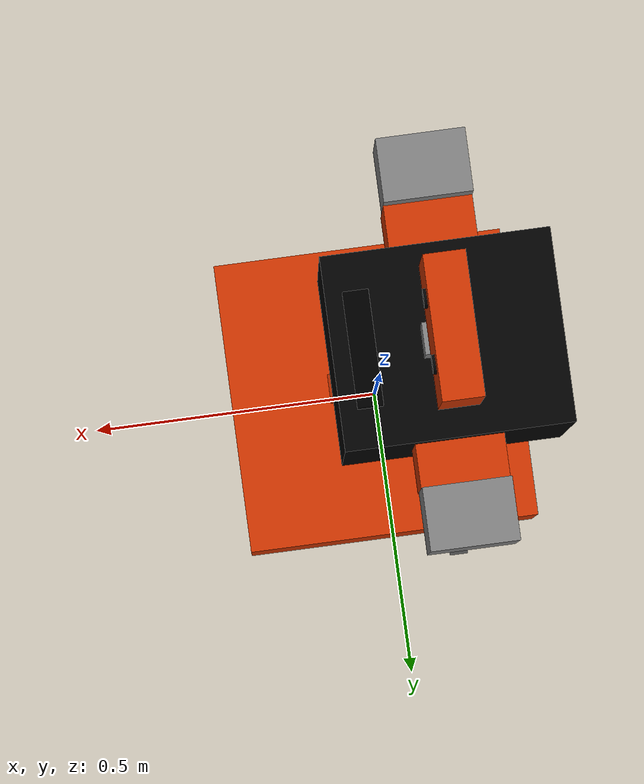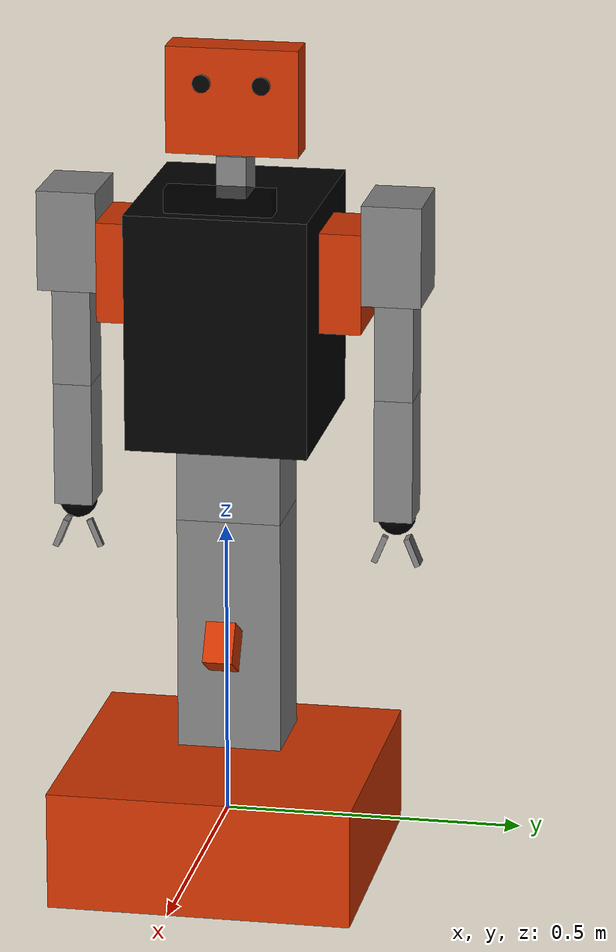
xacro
<?xml version="1.0"?>
<robot xmlns:xacro="http://www.ros.org/wiki/xacro" name="tangerige">

<!-- .......................MACROS.................... -->

  <xacro:macro name="default_physics" params="mass len rad">
  	<collision>
      <geometry>
        <cylinder length="${len}" radius="${rad}"/>
      </geometry>
    </collision>
  	<inertial>
  		<mass value="${mass}" />
  		<inertia ixx="1.0" ixy="0.0" ixz="0.0"
  											 iyy="1.0" iyz="0.0"
  											 izz="1.0" />
  	</inertial>
  	<dynamics damping="0.7" friction="1000.0"/>
  </xacro:macro>

  <xacro:macro name="gazebo_colors" params="name color">
  	<gazebo reference="${name}">
    	<material>Gazebo/${color}</material>
  	</gazebo>
  </xacro:macro>

<!-- ....................... END MACROS.................... -->

<!-- ................BASE................. -->

  <link name="base_link_robot">
    <visual>
      <geometry>
        <box size="0.51 0.51 0.2"/>
      </geometry>
      <material name="orange">
      	<color rgba=".8 .2 0 1"/>
      </material>
    </visual>
    <origin xyz="0 0 -.1"/>
    <xacro:default_physics mass="10" len="0.2" rad="0.31"/>
  </link>

  <xacro:gazebo_colors name="base_link_robot" color="Red" />

  <link name="lower_torso">
    <visual>
      <geometry>
        <box size="0.15 0.176 0.4"/>
      </geometry>
      <material name="grey">
      	<color rgba="0.5 0.5 0.5 1"/>
      </material>
      <origin rpy="0 0 0"/>
    </visual>
    <xacro:default_physics mass="6" len="0.55" rad="0.13"/>
  </link>

  <xacro:gazebo_colors name="lower_torso" color="Red" />

  <joint name="base_to_laser_link" type="revolute">
  	<axis xyz="1 0 0"/>
  	<limit effort="1000.0" lower="0" upper="0" velocity="0"/>
    <parent link="base_link_robot"/>
    <child link="lower_torso"/>
    <origin xyz="-0.093 0 0.3"/>
  </joint>

<!--newly added laser link and joint with the lower torso -->

<link name="base_laser">
    <visual>
      <geometry>
        <box size="0.07 0.05 0.07"/>
      </geometry>
      <material name="orange">
      	<color rgba=".8 .2 0 1"/>
      </material>
    </visual>
    <origin xyz="0 0 0"/>
    <xacro:default_physics mass="6" len="0.1" rad="0.1"/>
  </link>

  <xacro:gazebo_colors name="base_laser" color="Red" />

  <joint name="lower_torso_to_laser_link" type="revolute">
  	<axis xyz="0 1 0"/>
  	<limit effort="1000.0" lower="-0.57" upper="0.57" velocity="1"/>
    <parent link="lower_torso"/>
    <child link="base_laser"/>
    <origin xyz="0.13 0 0" rpy="0 -0.523 0"/>
  </joint>

<!-- the link and joint end here -->

  <link name="upper_base_laser">
    <visual>
      <geometry>
        <box size="0.176 0.15 0.15"/>
      </geometry>
      <material name="grey"/>
    </visual>
    <xacro:default_physics mass="6" len="0.55" rad="0.13"/>
  </link>

  <xacro:gazebo_colors name="upper_base_laser" color="Gray" />

  <joint name="base_to_upper_base" type="revolute">
  	<axis xyz="1 0 0"/>
  	<limit effort="1000.0" lower="0" upper="0" velocity="0"/>
    <parent link="base_link_robot"/>
    <child link="upper_base_laser"/>
    <origin rpy="0 0 -1.57075" xyz="-0.093 0 0.575"/>
  </joint>

  <link name="superior_link">
    <visual>
      <geometry>
        <box size="0.305 0.360 0.4"/>
      </geometry>
      <material name="black">
      	<color rgba="0 0 0 1"/>
      </material>
    </visual>
    <xacro:default_physics mass="8" len="0.4" rad="0.22"/>
  </link>

  <xacro:gazebo_colors name="superior_link" color="Black" />

  <joint name="upper_base_to_superior_link" type="revolute">
  	<axis xyz="1 0 0"/>
  	<limit effort="1000" lower="0" upper="0" velocity="0"/>
    <parent link="upper_base_laser"/>
    <child link="superior_link"/>
    <origin xyz="0 0 0.275"/>
  </joint>

 <link name="skeleton/openni_depth_frame">
  <visual>
    <geometry>
      <box size="0.04 0.18 0.04"/>
     </geometry>
     <material name="grey">
      <color rgba="0 0 0 0.5"/>
     </material>
  </visual>
  <xacro:default_physics mass="0.01" len="0.01" rad="0.01"/>
  </link>

 <joint name="superior_link_to_openni_depth_frame" type="revolute">
  	<axis xyz="1 0 0"/>
  	<limit effort="1000.0" lower="0" upper="0" velocity="0"/>
    <parent link="superior_link"/>
    <child link="skeleton/openni_depth_frame"/>
    <origin rpy="0 0 1.57075" xyz="0 0.1325 0.22"/>
  </joint>

  <!-- ................END BASE................. -->

  <!-- ................HEAD................. -->

  <link name="neck_link">
    <visual>
      <geometry>
        <box size="0.05 0.08 0.07"/>
      </geometry>
      <material name="grey"/>
    </visual>
    <xacro:default_physics mass="0.5" len="0.07" rad="0.036"/>
  </link>

  <xacro:gazebo_colors name="neck_link" color="Red" />

  <joint name="superior_to_neck_link" type="revolute">
  	<axis xyz="1 0 0"/>
  	<limit effort="1000.0" lower="0" upper="0" velocity="0"/>
    <parent link="superior_link"/>
    <child link="neck_link"/>
    <origin xyz="0 0 0.235"/>
  </joint>

  <link name="neck_z_revolute">
  	<xacro:default_physics mass="0.01" len="0.01" rad="0.01"/>
  </link>

  <joint name="neck_to_z_revolute" type="revolute">
  	<axis xyz="0 0 1"/>
  	<limit effort="1000.0" lower="-0.7853" upper="0.7853" velocity="5"/>
    <parent link="neck_link"/>
    <child link="neck_z_revolute"/>
  </joint>

  <link name="neck_x_revolute">
  	<xacro:default_physics mass="0.01" len="0.01" rad="0.01"/>
  </link>

  <joint name="z_revolute_to_x_revolute" type="revolute">
  	<axis xyz="1 0 0"/>
  	<limit effort="1000.0" lower="-0.3926" upper="0.3926" velocity="5"/>
    <parent link="neck_z_revolute"/>
    <child link="neck_x_revolute"/>
  </joint>

  <link name="head">
    <visual>
      <geometry>
        <box size="0.222 0.065 0.18"/>
      </geometry>
      <material name="orange"/>
    </visual>
    <xacro:default_physics mass="4" len="0.18" rad="0.16"/>
  </link>

  <xacro:gazebo_colors name="head" color="Red" />

  <joint name="revolute_head" type="revolute">
  	<axis xyz="1 0 0"/>
  	<limit effort="1000.0" lower="0" upper="0" velocity="0"/>
    <parent link="neck_x_revolute"/>
    <child link="head"/>
    <origin xyz="0 0 0.125"/>
  </joint>

  <link name="right_eye">
    <visual>
      <geometry>
        <cylinder length="0.015" radius="0.015"/>
      </geometry>
      <material name="black"/>
      <origin rpy="-1.57075 0 0" />
    </visual>
    <xacro:default_physics mass="0.2" len="0.03" rad="0.01"/>
  </link>

  <joint name="right_eye_to_head" type="revolute">
  	<axis xyz="1 0 0"/>
  	<limit effort="1000.0" lower="0" upper="0" velocity="0"/>
    <parent link="head"/>
    <child link="right_eye"/>
    <origin xyz="0.05 0.03 0.03"/>
  </joint>

  <link name="left_eye">
    <visual>
      <geometry>
        <cylinder length="0.015" radius="0.015"/>
      </geometry>
      <material name="black"/>
      <origin rpy="-1.57075 0 0" />
    </visual>
    <xacro:default_physics mass="0.2" len="0.03" rad="0.01"/>
  </link>

  <joint name="left_eye_to_head" type="revolute">
  	<axis xyz="1 0 0"/>
  	<limit effort="1000.0" lower="0" upper="0" velocity="0"/>
    <parent link="head"/>
    <child link="left_eye"/>
    <origin xyz="-0.05 0.03 0.03"/>
  </joint>

  <!-- ................END HEAD................. -->

  <!-- ................RIGHT ARM................. -->

  <link name="right_shoulder_link">
    <visual>
      <geometry>
        <box size="0.07 0.14 0.17"/>
      </geometry>
      <material name="orange"/>
    </visual>
    <xacro:default_physics mass="2" len="0.23" rad="0.13"/>
  </link>

  <xacro:gazebo_colors name="right_shoulder_link" color="Gray" />

  <joint name="superior_link_to_right_shoulder_link" type="revolute">
  	<axis xyz="1 0 0"/>
  	<limit effort="1000.0" lower="-0.785375" upper="1.57075" velocity="5"/>
    <parent link="superior_link"/>
    <child link="right_shoulder_link"/>
    <origin xyz="0.1875 0 0.07"/>
  </joint>

  <link name="right_shoulder">
    <visual>
      <geometry>
        <box size="0.10 0.14 0.17"/>
      </geometry>
      <material name="grey"/>
    </visual>
    <xacro:default_physics mass="2" len="0.23" rad="0.13"/>
  </link>

  <xacro:gazebo_colors name="right_shoulder" color="Gray" />

  <joint name="right_shoulder_x_revolute" type="revolute">
  	<axis xyz="1 0 0"/>
  	<limit effort="1000.0" lower="-0.785375" upper="1.57075" velocity="5"/>
    <parent link="superior_link"/>
    <child link="right_shoulder"/>
    <origin xyz="0.2725 0 0.12"/>
  </joint>

  <link name="upper_right_arm_z_revolute">
  	<xacro:default_physics mass="0.01" len="0.01" rad="0.01"/>
  </link>

  <joint name="upper_right_arm_z_revolute" type="revolute">
  	<axis xyz="0 0 1"/>
  	<limit effort="1000.0" lower="-0.3926" upper="0.3926" velocity="5"/>
    <parent link="right_shoulder"/>
    <child link="upper_right_arm_z_revolute"/>
    <origin xyz="0 0 0"/>
  </joint>

  <link name="upper_right_arm_y_revolute">
  	<xacro:default_physics mass="0.01" len="0.01" rad="0.01"/>
  </link>

  <joint name="upper_right_arm_y_revolute" type="revolute">
  	<axis xyz="0 1 0"/>
  	<limit effort="1000.0" lower="-0.3926" upper="0" velocity="5"/>
    <parent link="upper_right_arm_z_revolute"/>
    <child link="upper_right_arm_y_revolute"/>
    <origin xyz="0 0 0"/>
  </joint>

  <link name="upper_right_arm">
    <visual>
      <geometry>
        <box size="0.065 0.08 0.17"/>
      </geometry>
      <material name="grey"/>
    </visual>
    <xacro:default_physics mass="3" len="0.17" rad="0.046"/>
  </link>

  <xacro:gazebo_colors name="upper_right_arm" color="Gray" />

  <joint name="shoulder_to_upper_right_arm" type="revolute">
  	<axis xyz="1 0 0"/>
  	<limit effort="1000.0" lower="0" upper="0" velocity="0"/>
    <parent link="upper_right_arm_y_revolute"/>
    <child link="upper_right_arm"/>
    <origin xyz="0 0 -0.17"/>
  </joint>

  <link name="lower_right_arm">
    <visual>
      <geometry>
        <box size="0.065 0.08 0.21"/>
      </geometry>
      <material name="grey"/>
    </visual>
    <xacro:default_physics mass="0.5" len="0.21" rad="0.046"/>
  </link>

  <xacro:gazebo_colors name="lower_right_arm" color="Gray" />

  <joint name="upper_to_lower_right_arm" type="revolute">
  	<axis xyz="1 0 0"/>
  	<limit effort="1000.0" lower="0" upper="0.3926" velocity="5"/>
    <parent link="upper_right_arm"/>
    <child link="lower_right_arm"/>
    <origin xyz="0 0 -0.19"/>
  </joint>

  <link name="wrist_right_arm_z_revolute">
  	<xacro:default_physics mass="0.01" len="0.01" rad="0.01"/>
  </link>

  <joint name="wrist_right_arm_z_revolute" type="revolute">
  	<axis xyz="0 0 1"/>
  	<limit effort="1000.0" lower="-2" upper="2" velocity="5"/>
    <parent link="lower_right_arm"/>
    <child link="wrist_right_arm_z_revolute"/>
  </joint>

  <link name="wrist_right_arm_x_revolute">
  	<xacro:default_physics mass="0.01" len="0.01" rad="0.01"/>
  </link>

  <joint name="wrist_right_arm_x_revolute" type="revolute">
  	<axis xyz="1 0 0"/>
  	<limit effort="1000.0" lower="-0.3926" upper="0.3926" velocity="5"/>
    <parent link="wrist_right_arm_z_revolute"/>
    <child link="wrist_right_arm_x_revolute"/>
  </joint>

  <link name="wrist_right_arm">
    <visual>
      <geometry>
        <sphere radius="0.0325"/>
      </geometry>
      <material name="black"/>
    </visual>
    <xacro:default_physics mass="1" len="0.0325" rad="0.0325"/>
  </link>

  <xacro:gazebo_colors name="wrist_right_arm" color="Black" />

  <joint name="lower_to_wrist_right_arm" type="revolute">
  	<axis xyz="1 0 0"/>
  	<limit effort="1000.0" lower="0" upper="0" velocity="0"/>
    <parent link="wrist_right_arm_x_revolute"/>
    <child link="wrist_right_arm"/>
    <origin xyz="0 0 -0.105"/>
  </joint>

  <link name="finger1_right_arm">
    <visual>
      <geometry>
        <box size="0.01 0.01 0.05"/>
      </geometry>
      <origin xyz="0 0 -0.025" />
      <material name="grey"/>
    </visual>
    <xacro:default_physics mass="0.2" len="0.05" rad="0.005"/>
  </link>

  <xacro:gazebo_colors name="finger1_right_arm" color="Gray" />

  <joint name="wrist_to_finger1_right_arm" type="revolute">
  	<axis xyz="0 1 0"/>
  	<limit effort="1000.0" lower="0" upper="-0.68" velocity="5"/>
    <parent link="wrist_right_arm"/>
    <child link="finger1_right_arm"/>
    <origin rpy="0 0.3926875 0" xyz="-0.01875 0 -0.0375"/>
  </joint>

  <link name="finger2_right_arm">
    <visual>
      <geometry>
        <box size="0.01 0.03 0.05"/>
      </geometry>
      <origin xyz="0 0 -0.025" />
      <material name="grey"/>
    </visual>
    <xacro:default_physics mass="0.2" len="0.05" rad="0.005"/>
  </link>

  <xacro:gazebo_colors name="finger2_right_arm" color="Gray" />

  <joint name="wrist_to_finger2_right_arm" type="revolute">
  	<axis xyz="0 1 0"/>
  	<limit effort="1000.0" lower="0.68" upper="0" velocity="5"/>
    <parent link="wrist_right_arm"/>
    <child link="finger2_right_arm"/>
    <origin rpy="0 -0.3926875 0" xyz="0.01875 0 -0.0375"/>
  </joint>

  <!-- ................END RIGHT ARM................. -->

    <!-- ................LEFT ARM................. -->

  <link name="left_shoulder_link">
    <visual>
      <geometry>
        <box size="0.07 0.14 0.17"/>
      </geometry>
      <material name="orange"/>
    </visual>
    <xacro:default_physics mass="2" len="0.23" rad="0.13"/>
  </link>

  <xacro:gazebo_colors name="left_shoulder_link" color="Gray" />

  <joint name="superior_link_to_left_shoulder_link" type="revolute">
  	<axis xyz="1 0 0"/>
  	<limit effort="1000.0" lower="-0.785375" upper="1.57075" velocity="5"/>
    <parent link="superior_link"/>
    <child link="left_shoulder_link"/>
    <origin xyz="-0.1875 0 0.07"/>
  </joint>

  <link name="left_shoulder">
    <visual>
      <geometry>
        <box size="0.10 0.14 0.17"/>
      </geometry>
      <material name="grey"/>
    </visual>
    <xacro:default_physics mass="2" len="0.23" rad="0.13"/>
  </link>

  <xacro:gazebo_colors name="left_shoulder" color="Gray" />

  <joint name="left_shoulder_x_revolute" type="revolute">
  	<axis xyz="1 0 0"/>
  	<limit effort="1000.0" lower="-0.785375" upper="1.57075" velocity="5"/>
    <parent link="superior_link"/>
    <child link="left_shoulder"/>
    <origin xyz="-0.2725 0 0.12"/>
  </joint>

  <link name="upper_left_arm_z_revolute">
  	<xacro:default_physics mass="0.01" len="0.01" rad="0.01"/>
  </link>

  <joint name="upper_left_arm_z_revolute" type="revolute">
  	<axis xyz="0 0 1"/>
  	<limit effort="1000.0" lower="-0.3926" upper="0.3926" velocity="5"/>
    <parent link="left_shoulder"/>
    <child link="upper_left_arm_z_revolute"/>
    <origin xyz="0 0 0"/>
  </joint>

  <link name="upper_left_arm_y_revolute">
  	<xacro:default_physics mass="0.01" len="0.01" rad="0.01"/>
  </link>

  <joint name="upper_left_arm_y_revolute" type="revolute">
  	<axis xyz="0 1 0"/>
  	<limit effort="1000.0" lower="-0.3926" upper="0" velocity="5"/>
    <parent link="upper_left_arm_z_revolute"/>
    <child link="upper_left_arm_y_revolute"/>
    <origin xyz="0 0 0"/>
  </joint>

  <link name="upper_left_arm">
    <visual>
      <geometry>
        <box size="0.065 0.08 0.17"/>
      </geometry>
      <material name="grey"/>
    </visual>
    <xacro:default_physics mass="0.5" len="0.17" rad="0.046"/>
  </link>

  <xacro:gazebo_colors name="upper_left_arm" color="Gray" />

  <joint name="shoulder_to_upper_left_arm" type="revolute">
  	<axis xyz="1 0 0"/>
  	<limit effort="1000.0" lower="0" upper="0" velocity="0"/>
    <parent link="upper_left_arm_y_revolute"/>
    <child link="upper_left_arm"/>
    <origin xyz="0 0 -0.17"/>
  </joint>

  <link name="lower_left_arm">
    <visual>
      <geometry>
        <box size="0.065 0.08 0.21"/>
      </geometry>
      <material name="grey"/>
    </visual>
    <xacro:default_physics mass="3" len="0.21" rad="0.046"/>
  </link>

  <xacro:gazebo_colors name="lower_left_arm" color="Gray" />

  <joint name="upper_to_lower_left_arm" type="revolute">
  	<axis xyz="1 0 0"/>
  	<limit effort="1000.0" lower="0" upper="0.3926" velocity="5"/>
    <parent link="upper_left_arm"/>
    <child link="lower_left_arm"/>
    <origin xyz="0 0 -0.19"/>
  </joint>

  <link name="wrist_left_arm_z_revolute">
  	<xacro:default_physics mass="0.01" len="0.01" rad="0.01"/>
  </link>

  <joint name="wrist_left_arm_z_revolute" type="revolute">
  	<axis xyz="0 0 1"/>
  	<limit effort="1000.0" lower="-2" upper="2" velocity="5"/>
    <parent link="lower_left_arm"/>
    <child link="wrist_left_arm_z_revolute"/>
  </joint>

  <link name="wrist_left_arm_x_revolute">
  	<xacro:default_physics mass="0.01" len="0.01" rad="0.01"/>
  </link>

  <joint name="wrist_left_arm_x_revolute" type="revolute">
  	<axis xyz="1 0 0"/>
  	<limit effort="1000.0" lower="-0.3926" upper="0.3926" velocity="5"/>
    <parent link="wrist_left_arm_z_revolute"/>
    <child link="wrist_left_arm_x_revolute"/>
  </joint>

  <link name="wrist_left_arm">
    <visual>
      <geometry>
        <sphere radius="0.0325"/>
      </geometry>
      <material name="black"/>
    </visual>
    <xacro:default_physics mass="1" len="0.075" rad="0.0375"/>
  </link>

  <xacro:gazebo_colors name="wrist_left_arm" color="Black" />

  <joint name="lower_to_wrist_left_arm" type="revolute">
  	<axis xyz="1 0 0"/>
  	<limit effort="1000.0" lower="0" upper="0" velocity="0"/>
    <parent link="wrist_left_arm_x_revolute"/>
    <child link="wrist_left_arm"/>
    <origin xyz="0 0 -0.105"/>
  </joint>

  <link name="finger1_left_arm">
    <visual>
      <geometry>
        <box size="0.01 0.01 0.05"/>
      </geometry>
      <origin xyz="0 0 -0.025" />
      <material name="grey"/>
    </visual>
    <xacro:default_physics mass="0.2" len="0.05" rad="0.005"/>
  </link>

  <xacro:gazebo_colors name="finger1_left_arm" color="Gray" />

  <joint name="wrist_to_finger1_left_arm" type="revolute">
  	<axis xyz="0 1 0"/>
  	<limit effort="1000.0" lower="0.68" upper="0" velocity="5"/>
    <parent link="wrist_left_arm"/>
    <child link="finger1_left_arm"/>
    <origin rpy="0 -0.3926875 0" xyz="0.01875 0 -0.0375"/>
  </joint>

  <link name="finger2_left_arm">
    <visual>
      <geometry>
        <box size="0.01 0.03 0.05"/>
      </geometry>
      <origin xyz="0 0 -0.025" />
      <material name="grey"/>
    </visual>
    <xacro:default_physics mass="0.2" len="0.05" rad="0.005"/>
  </link>

  <xacro:gazebo_colors name="finger2_left_arm" color="Gray" />

  <joint name="wrist_to_finger2_left_arm" type="revolute">
  	<axis xyz="0 1 0"/>
  	<limit effort="1000.0" lower="0" upper="-0.68" velocity="5"/>
    <parent link="wrist_left_arm"/>
    <child link="finger2_left_arm"/>
    <origin rpy="0 0.3926875 0" xyz="-0.01875 0 -0.0375"/>
  </joint>

  <!-- ................END LEFT ARM................. -->

</robot>
